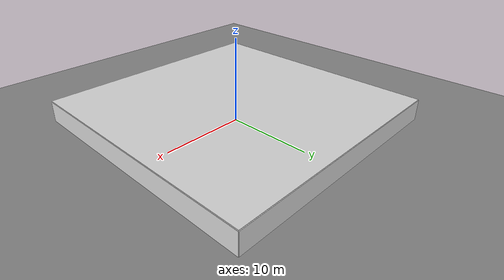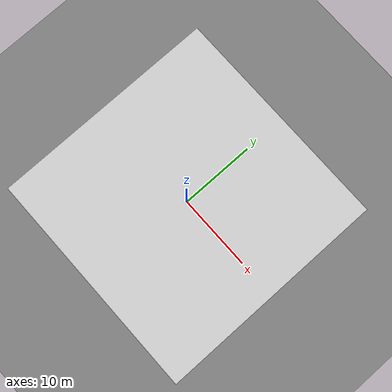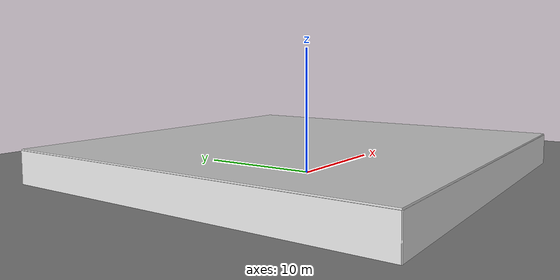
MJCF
<mujoco model="scene">

  <visual>
    <headlight diffuse="0.6 0.6 0.6" ambient="0.3 0.3 0.3" specular="0 0 0"/>
    <rgba haze="0.871 0.616 0.4 0.5"/>
    <global azimuth="-130" elevation="-20"/>
  </visual>

  <asset>
    <texture builtin="gradient" height="100" rgb1="0.9 0.9 0.9" rgb2="0.55 0.25 0.0" type="skybox" width="100"/>
    <include file="../../room/objects/materials.xml"/>
  </asset>

    <worldbody>
        <geom name="floor" friction="1 .1 .1" pos="0 0 0" size="0 0 0.125" type="plane" material="mat_floor" condim="3" conaffinity="1" contype="1" group="2"/>
        <light cutoff="1000" diffuse="1.5 1.5 1.5" dir="-0 0 -1.3" directional="true" exponent="10" pos="0 0 10.3" specular=".1 .1 .1" castshadow="false"/>

        <geom name="wall_negx" type="box" pos="-15.0 0.0 1.25" size="0.05 15.0 1.25" material="mat_wall"/>
        <geom name="wall_posx" type="box" pos=" 15.0 0.0 1.25" size="0.05 15.0 1.25" material="mat_wall"/>
        <geom name="wall_negy" type="box" pos="0.0 -15.0 1.25" size="15.0 0.05 1.25" material="mat_wall"/>
        <geom name="wall_posy" type="box" pos="0.0  15.0 1.25" size="15.0 0.05 1.25" material="mat_wall"/>

        <geom name="ceiling" type="box"
          pos="0 0 2.55"
          size="15.0 15.0 0.05"
          material="mat_wall"
          contype="1" conaffinity="1"
        />

        <!-- SCENARIO: trash_can_05 -->
        <!-- TARGET_BODY_NAME: trash_can_target -->
        <!-- LAYOUT: target=trash_can, distance=medium, side=right, difficulty=moderate -->

        <!-- TARGET: trash_can -->
        <body name="trash_can_target" pos="4.8125 -1.8002 0.0" euler="0 0 -0.8515">
          <include file="../../room/objects/trash_can.xml"/>
        </body>

        <!-- OBSTRUCTOR: none -->

        <!-- DISTRACTOR: chair -->
        <body name="chair_distractor1" pos="2.4956 0.9849 0.0" euler="0 0 1.3085">
          <include file="../../room/objects/chair.xml"/>
        </body>
        <!-- DISTRACTOR: couch -->
        <body name="couch_distractor2" pos="6.3556 0.5449 0.0" euler="0 0 -1.2295">
          <include file="../../room/objects/couch.xml"/>
        </body>
    </worldbody>
</mujoco>

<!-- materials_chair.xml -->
<mujoco>
  <texture name="tex_wood_chair" type="2d" file="oak_veneer_01_diff_2k.png"/>
  <material name="mat_wood_chair"
            texture="tex_wood_chair"
            texrepeat="1.2 1.2"
            texuniform="true"
            rgba="1 1 1 1"
            specular="0.22"
            shininess="0.35"
            reflectance="0.04"/>
</mujoco>

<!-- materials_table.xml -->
<mujoco>
  <texture name="tex_wood_table" type="2d" file="wood_table_001_diff_2k.png"/>
  <material name="mat_wood_table"
            texture="tex_wood_table"
            texrepeat="1.2 1.2"
            texuniform="true"
            rgba="1 1 1 1"
            specular="0.22"
            shininess="0.35"
            reflectance="0.04"/>
</mujoco>

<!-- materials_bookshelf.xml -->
<mujoco>
  <texture name="tex_bookshelf_wood"
           type="2d"
           file="oak_veneer_01_diff_2k.png"/>

  <material name="mat_wood_bookshelf"
            texture="tex_bookshelf_wood"
            texrepeat="1.2 1.2"
            texuniform="true"
            rgba="1 1 1 1"
            specular="0.22"
            shininess="0.35"
            reflectance="0.04"/>
</mujoco>

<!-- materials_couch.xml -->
<mujoco>
  <texture name="tex_wood_couch" type="2d" file="wood_table_001_diff_2k.png"/>
  <material name="mat_wood_couch"
            texture="tex_wood_couch"
            texrepeat="1.2 1.2"
            texuniform="true"
            rgba="1 1 1 1"
            specular="0.22"
            shininess="0.35"
            reflectance="0.04"/>

  <texture name="tex_fabric" type="2d" file="rough_linen_diff_2k.png"/>
  <material name="mat_fabric"
            texture="tex_fabric"
            texrepeat="1.2 1.2"
            texuniform="true"
            rgba="1 1 1 1"
            specular="0.10"
            shininess="0.08"
            reflectance="0.01"/>
</mujoco>

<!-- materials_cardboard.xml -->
<mujoco>
  <texture name="tex_cardboard" type="2d" file="cardboard.png"/>
  <material name="mat_cardboard"
            texture="tex_cardboard"
            texrepeat="1.2 1.2"
            texuniform="true"
            rgba="1 1 1 1"
            specular="0.10"
            shininess="0.08"
            reflectance="0.01"/>
</mujoco>

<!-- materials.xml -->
<mujoco>
  <material name="mat_wall" rgba="0.85 0.85 0.85 1"/>
  <include file="materials_chair.xml"/>

  <include file="materials_table.xml"/>

  <include file="materials_bookshelf.xml"/>
  <material name="mat_book_red" rgba="0.70 0.18 0.16 1"/>
  <material name="mat_book_blue" rgba="0.16 0.31 0.62 1"/>
  <material name="mat_book_green" rgba="0.22 0.45 0.24 1"/>
  <material name="mat_book_yellow" rgba="0.78 0.66 0.22 1"/>
  <material name="mat_book_dark" rgba="0.20 0.18 0.17 1"/>

  <include file="materials_couch.xml"/>
  <include file="materials_cardboard.xml"/>

  <texture name="tex_metal" type="2d" file="metal.png"/>
  <material name="mat_metal" texture="tex_metal" texrepeat="2 2" reflectance="0.3"/>
  <material name="mat_trash_can_dark_green"
            texture="tex_metal"
            texrepeat="2 2"
            rgba="0.10 0.18 0.12 1"
            specular="0.18"
            shininess="0.20"
            reflectance="0.02"/>

  <texture name="tex_floor" type="2d" builtin="checker" width="512" height="512"
           rgb1="0.55 0.55 0.55" rgb2="0.50 0.50 0.50"/>
  <material name="mat_floor" texture="tex_floor" texrepeat="4 4" reflectance="0.00"/>

</mujoco>

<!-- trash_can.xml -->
<mujoco>
  <body>
    <!-- bottom foot ring -->
    <geom name="trash_can_base_ring" type="cylinder"
          pos="0 0 0.020" size="0.115 0.020"
          material="mat_trash_can_dark_green"/>

    <!-- main body -->
    <geom name="trash_can_body" type="cylinder"
          pos="0 0 0.155" size="0.138 0.135"
          material="mat_trash_can_dark_green"/>

    <!-- upper collar -->
    <geom name="trash_can_upper_band" type="cylinder"
          pos="0 0 0.265" size="0.152 0.016"
          material="mat_trash_can_dark_green"/>

    <!-- rolled top rim -->
    <geom name="trash_can_rim" type="cylinder"
          pos="0 0 0.292" size="0.168 0.010"
          material="mat_trash_can_dark_green"/>

    <!-- inset inner lip for a more finished opening -->
    <geom name="trash_can_inner_lip" type="cylinder"
          pos="0 0 0.276" size="0.126 0.008"
          material="mat_trash_can_dark_green"/>
  </body>
</mujoco>

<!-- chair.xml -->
<mujoco>
  <body>
    <!-- seat frame and seat board -->
    <geom name="chair_seat_top" type="box"
          pos="0 0 0.43" size="0.24 0.22 0.018"
          material="mat_wood_chair"/>
    <geom name="chair_helper_front" type="box"
          pos="0 0.185 0.185" size="0.187 0.012 0.185"
          rgba="0 0 0 0"/>
    <geom name="chair_helper_back" type="box"
          pos="0 -0.185 0.185" size="0.187 0.012 0.185"
          rgba="0 0 0 0"/>
    <geom name="chair_helper_left" type="box"
          pos="-0.205 0 0.185" size="0.012 0.167 0.185"
          rgba="0 0 0 0"/>
    <geom name="chair_helper_right" type="box"
          pos="0.205 0 0.185" size="0.012 0.167 0.185"
          rgba="0 0 0 0"/>
    <geom name="chair_seat_apron_front" type="box"
          pos="0 0.195 0.385" size="0.21 0.015 0.028"
          material="mat_wood_chair"/>
    <geom name="chair_seat_apron_back" type="box"
          pos="0 -0.195 0.385" size="0.21 0.015 0.028"
          material="mat_wood_chair"/>
    <geom name="chair_seat_apron_left" type="box"
          pos="-0.225 0 0.385" size="0.015 0.18 0.028"
          material="mat_wood_chair"/>
    <geom name="chair_seat_apron_right" type="box"
          pos="0.225 0 0.385" size="0.015 0.18 0.028"
          material="mat_wood_chair"/>

    <!-- front legs -->
    <geom name="chair_leg_fl" type="box"
          pos="-0.205 0.185 0.195" size="0.018 0.018 0.195"
          material="mat_wood_chair"/>
    <geom name="chair_leg_fr" type="box"
          pos="0.205 0.185 0.195" size="0.018 0.018 0.195"
          material="mat_wood_chair"/>

    <!-- rear legs extend upward into the backrest posts -->
    <geom name="chair_leg_rl" type="box"
          pos="-0.205 -0.185 0.365" size="0.019 0.019 0.535"
          material="mat_wood_chair"/>
    <geom name="chair_leg_rr" type="box"
          pos="0.205 -0.185 0.365" size="0.019 0.019 0.535"
          material="mat_wood_chair"/>

    <!-- lower stretchers -->
    <geom name="chair_stretcher_front" type="box"
          pos="0 0.185 0.165" size="0.187 0.012 0.012"
          material="mat_wood_chair"/>
    <geom name="chair_stretcher_back" type="box"
          pos="0 -0.185 0.165" size="0.187 0.012 0.012"
          material="mat_wood_chair"/>
    <geom name="chair_stretcher_left" type="box"
          pos="-0.205 0 0.150" size="0.012 0.185 0.012"
          material="mat_wood_chair"/>
    <geom name="chair_stretcher_right" type="box"
          pos="0.205 0 0.150" size="0.012 0.185 0.012"
          material="mat_wood_chair"/>

    <!-- backrest frame -->
    <geom name="chair_back_top" type="box"
          pos="0 -0.185 0.865" size="0.18 0.016 0.022"
          material="mat_wood_chair"/>
    <geom name="chair_back_mid" type="box"
          pos="0 -0.178 0.710" size="0.155 0.013 0.018"
          material="mat_wood_chair"/>

    <!-- vertical back slats -->
    <geom name="chair_back_slat_l" type="box"
          pos="-0.085 -0.175 0.565" size="0.014 0.010 0.160"
          material="mat_wood_chair"/>
    <geom name="chair_back_slat_c" type="box"
          pos="0 -0.175 0.565" size="0.014 0.010 0.160"
          material="mat_wood_chair"/>
    <geom name="chair_back_slat_r" type="box"
          pos="0.085 -0.175 0.565" size="0.014 0.010 0.160"
          material="mat_wood_chair"/>
  </body>
</mujoco>

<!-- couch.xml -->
<mujoco>
<body>
  <!-- legs -->
  <geom name="couch_leg_fl" type="box"
        pos="-0.50 0.26 0.04" size="0.03 0.03 0.04"
        material="mat_wood_couch"/>
  <geom name="couch_leg_fr" type="box"
        pos="0.50 0.26 0.04" size="0.03 0.03 0.04"
        material="mat_wood_couch"/>
  <geom name="couch_leg_rl" type="box"
        pos="-0.50 -0.26 0.04" size="0.03 0.03 0.04"
        material="mat_wood_couch"/>
  <geom name="couch_leg_rr" type="box"
        pos="0.50 -0.26 0.04" size="0.03 0.03 0.04"
        material="mat_wood_couch"/>

  <!-- soft seat base -->
  <geom name="couch_seat_base" type="box"
        pos="0 0 0.16" size="0.54 0.27 0.08"
        material="mat_fabric"/>
  <geom name="couch_seat_front_roll" type="capsule"
        fromto="-0.48 0.24 0.195 0.48 0.24 0.195"
        size="0.055"
        material="mat_fabric"/>

  <!-- seat cushions -->
  <geom name="couch_seat_left" type="ellipsoid"
        pos="-0.22 0.02 0.255" size="0.17 0.21 0.065"
        material="mat_fabric"/>
  <geom name="couch_seat_mid" type="ellipsoid"
        pos="0.00 0.02 0.255" size="0.15 0.21 0.065"
        material="mat_fabric"/>
  <geom name="couch_seat_right" type="ellipsoid"
        pos="0.22 0.02 0.255" size="0.17 0.21 0.065"
        material="mat_fabric"/>

  <!-- back cushions -->
  <geom name="couch_back_core" type="box"
        pos="0 -0.160 0.37" size="0.53 0.105 0.16"
        material="mat_fabric"/>
  <geom name="couch_back_top_roll" type="capsule"
        fromto="-0.48 -0.145 0.52 0.48 -0.145 0.52"
        size="0.060"
        material="mat_fabric"/>
  <geom name="couch_back_left" type="ellipsoid"
        pos="-0.22 -0.095 0.39" size="0.16 0.100 0.15"
        material="mat_fabric"/>
  <geom name="couch_back_mid" type="ellipsoid"
        pos="0.00 -0.095 0.39" size="0.14 0.100 0.15"
        material="mat_fabric"/>
  <geom name="couch_back_right" type="ellipsoid"
        pos="0.22 -0.095 0.39" size="0.16 0.100 0.15"
        material="mat_fabric"/>

  <!-- softer armrests -->
  <geom name="couch_arm_left_core" type="box"
        pos="-0.49 0.02 0.34" size="0.055 0.24 0.15"
        material="mat_fabric"/>
  <geom name="couch_arm_right_core" type="box"
        pos="0.49 0.02 0.34" size="0.055 0.24 0.15"
        material="mat_fabric"/>
  <geom name="couch_arm_left_top" type="capsule"
        fromto="-0.49 -0.19 0.49 -0.49 0.18 0.49"
        size="0.050"
        material="mat_fabric"/>
  <geom name="couch_arm_right_top" type="capsule"
        fromto="0.49 -0.19 0.49 0.49 0.18 0.49"
        size="0.050"
        material="mat_fabric"/>
</body>
</mujoco>
